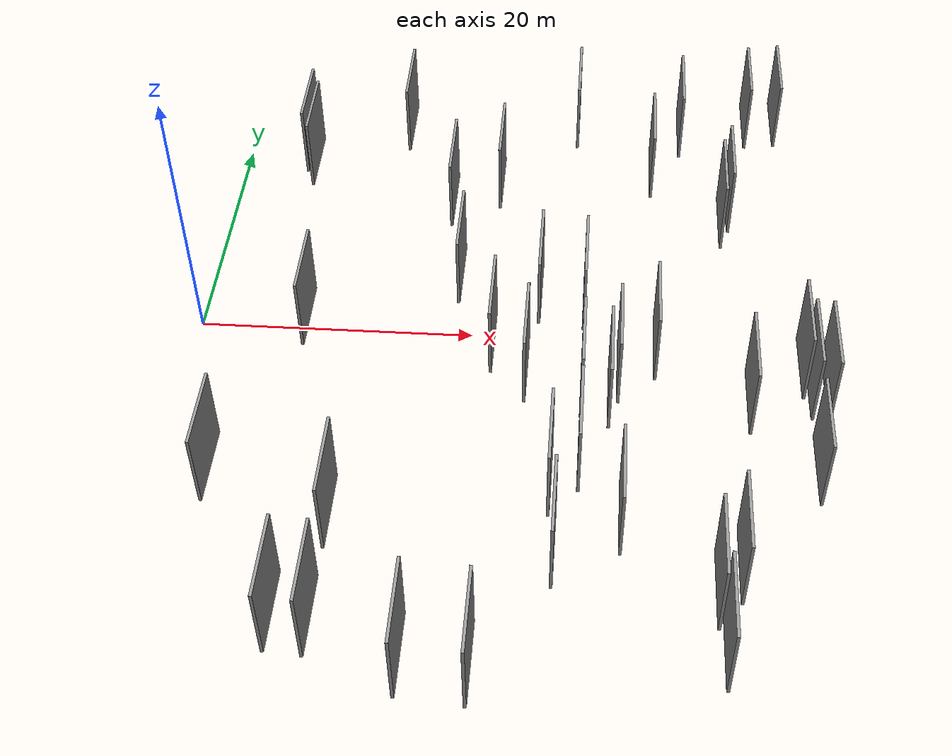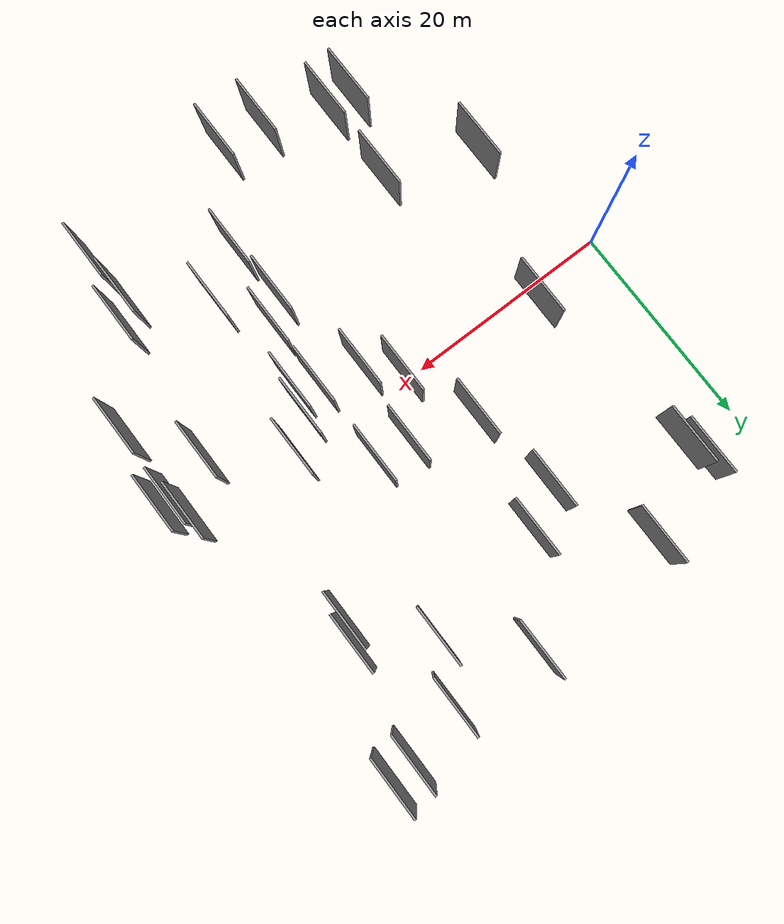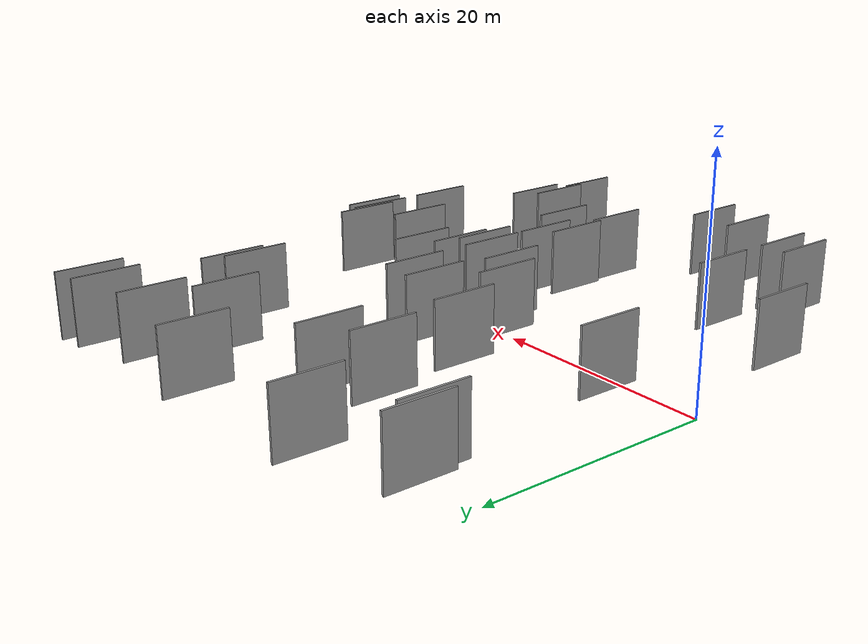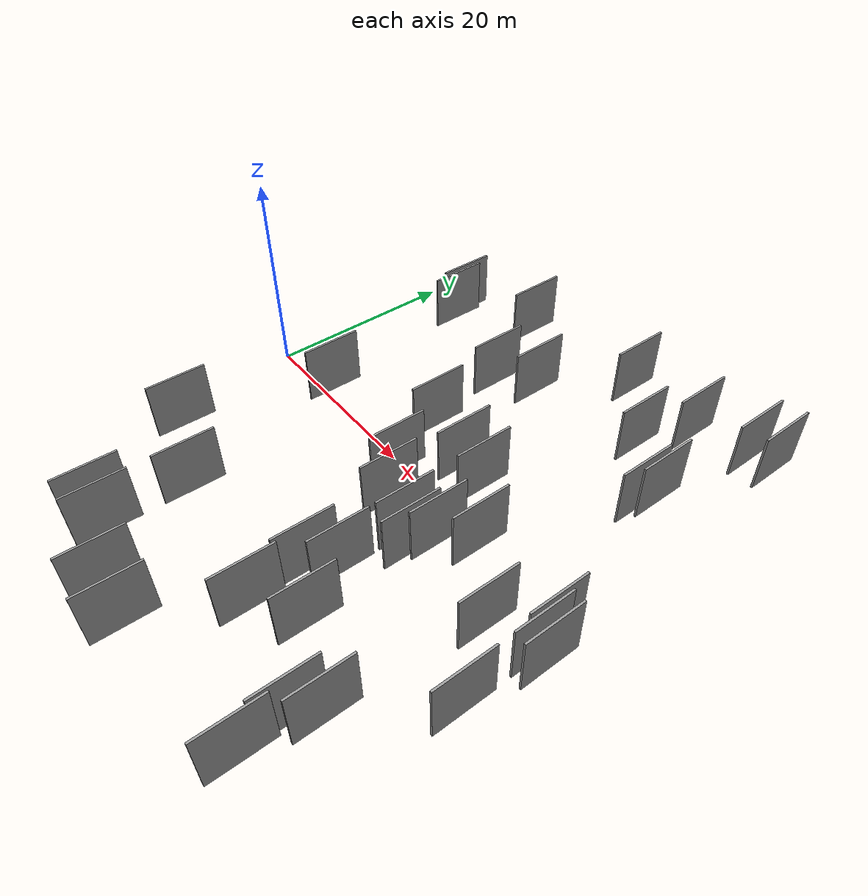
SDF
<sdf version="1.6">
 <world name="default">
  <scene>
   <sky><clouds><speed>12</speed></clouds></sky>
   <ambient>0.4 0.4 0.4 1</ambient>
   <background>0.7 0.7 0.7 1</background>
   <shadows>1</shadows>
  </scene>
  <gravity>0 0 -9.8066</gravity>
  <magnetic_field>6e-06 2.3e-05 -4.2e-05</magnetic_field>
  <physics default="0" name="default_physics" type="ode">
   <ode>
    <solver>
     <type>quick</type>
     <iters>10</iters>
     <sor>1.0</sor>
     <use_dynamic_moi_rescaling>0</use_dynamic_moi_rescaling>
    </solver>
    <constraints>
     <cfm>0</cfm>
     <erp>0.2</erp>
     <contact_max_correcting_vel>100</contact_max_correcting_vel>
     <contact_surface_layer>0.001</contact_surface_layer>
    </constraints>
   </ode>
   <max_step_size>0.004</max_step_size>
   <real_time_factor>1</real_time_factor>
   <real_time_update_rate>250</real_time_update_rate>
  </physics>
  <light name="sun" type="directional">
   <pose>0 0 10 0 0 0</pose>
   <diffuse>0.8 0.8 0.8 1</diffuse>
   <specular>0.2 0.2 0.2 1</specular>
   <attenuation>
    <range>1000</range>
    <constant>0.9</constant>
    <linear>0.01</linear>
    <quadratic>0.001</quadratic>
   </attenuation>
   <direction>-0.5 0.1 -0.9</direction>
  </light>
  <model name="grey_wall_1">
   <static>1</static>
   <pose>5.6228 19.3882 0.0 0.000000 0.000000 1.570796</pose>
   <link name="link">
    <pose>0 0 3.00 0 0 0</pose>
    <collision name="collision"><geometry><box><size>6.00 0.2 6.00</size></box></geometry></collision>
    <visual name="visual">
     <cast_shadows>0</cast_shadows>
     <geometry><box><size>6.00 0.2 6.00</size></box></geometry>
     <material>
      <script>
       <uri>model://grey_wall/materials/scripts</uri>
       <uri>model://grey_wall/materials/textures</uri>
       <name>vrc/grey_wall</name>
      </script>
     </material>
    </visual>
   </link>
  </model>
  <model name="grey_wall_2">
   <static>1</static>
   <pose>44.4000 -11.1385 0.0 0.000000 0.000000 1.570796</pose>
   <link name="link">
    <pose>0 0 3.00 0 0 0</pose>
    <collision name="collision"><geometry><box><size>6.00 0.2 6.00</size></box></geometry></collision>
    <visual name="visual">
     <cast_shadows>0</cast_shadows>
     <geometry><box><size>6.00 0.2 6.00</size></box></geometry>
     <material>
      <script>
       <uri>model://grey_wall/materials/scripts</uri>
       <uri>model://grey_wall/materials/textures</uri>
       <name>vrc/grey_wall</name>
      </script>
     </material>
    </visual>
   </link>
  </model>
  <model name="grey_wall_3">
   <static>1</static>
   <pose>13.0281 24.3655 0.0 0.000000 0.000000 1.570796</pose>
   <link name="link">
    <pose>0 0 3.00 0 0 0</pose>
    <collision name="collision"><geometry><box><size>6.00 0.2 6.00</size></box></geometry></collision>
    <visual name="visual">
     <cast_shadows>0</cast_shadows>
     <geometry><box><size>6.00 0.2 6.00</size></box></geometry>
     <material>
      <script>
       <uri>model://grey_wall/materials/scripts</uri>
       <uri>model://grey_wall/materials/textures</uri>
       <name>vrc/grey_wall</name>
      </script>
     </material>
    </visual>
   </link>
  </model>
  <model name="grey_wall_4">
   <static>1</static>
   <pose>39.2123 15.6683 0.0 0.000000 0.000000 1.570796</pose>
   <link name="link">
    <pose>0 0 3.00 0 0 0</pose>
    <collision name="collision"><geometry><box><size>6.00 0.2 6.00</size></box></geometry></collision>
    <visual name="visual">
     <cast_shadows>0</cast_shadows>
     <geometry><box><size>6.00 0.2 6.00</size></box></geometry>
     <material>
      <script>
       <uri>model://grey_wall/materials/scripts</uri>
       <uri>model://grey_wall/materials/textures</uri>
       <name>vrc/grey_wall</name>
      </script>
     </material>
    </visual>
   </link>
  </model>
  <model name="grey_wall_5">
   <static>1</static>
   <pose>24.8268 4.6167 0.0 0.000000 0.000000 1.570796</pose>
   <link name="link">
    <pose>0 0 3.00 0 0 0</pose>
    <collision name="collision"><geometry><box><size>6.00 0.2 6.00</size></box></geometry></collision>
    <visual name="visual">
     <cast_shadows>0</cast_shadows>
     <geometry><box><size>6.00 0.2 6.00</size></box></geometry>
     <material>
      <script>
       <uri>model://grey_wall/materials/scripts</uri>
       <uri>model://grey_wall/materials/textures</uri>
       <name>vrc/grey_wall</name>
      </script>
     </material>
    </visual>
   </link>
  </model>
  <model name="grey_wall_6">
   <static>1</static>
   <pose>28.2179 -4.4504 0.0 0.000000 0.000000 1.570796</pose>
   <link name="link">
    <pose>0 0 3.00 0 0 0</pose>
    <collision name="collision"><geometry><box><size>6.00 0.2 6.00</size></box></geometry></collision>
    <visual name="visual">
     <cast_shadows>0</cast_shadows>
     <geometry><box><size>6.00 0.2 6.00</size></box></geometry>
     <material>
      <script>
       <uri>model://grey_wall/materials/scripts</uri>
       <uri>model://grey_wall/materials/textures</uri>
       <name>vrc/grey_wall</name>
      </script>
     </material>
    </visual>
   </link>
  </model>
  <model name="grey_wall_7">
   <static>1</static>
   <pose>38.8228 -19.3065 0.0 0.000000 0.000000 1.570796</pose>
   <link name="link">
    <pose>0 0 3.00 0 0 0</pose>
    <collision name="collision"><geometry><box><size>6.00 0.2 6.00</size></box></geometry></collision>
    <visual name="visual">
     <cast_shadows>0</cast_shadows>
     <geometry><box><size>6.00 0.2 6.00</size></box></geometry>
     <material>
      <script>
       <uri>model://grey_wall/materials/scripts</uri>
       <uri>model://grey_wall/materials/textures</uri>
       <name>vrc/grey_wall</name>
      </script>
     </material>
    </visual>
   </link>
  </model>
  <model name="grey_wall_8">
   <static>1</static>
   <pose>7.7020 1.3010 0.0 0.000000 0.000000 1.570796</pose>
   <link name="link">
    <pose>0 0 3.00 0 0 0</pose>
    <collision name="collision"><geometry><box><size>6.00 0.2 6.00</size></box></geometry></collision>
    <visual name="visual">
     <cast_shadows>0</cast_shadows>
     <geometry><box><size>6.00 0.2 6.00</size></box></geometry>
     <material>
      <script>
       <uri>model://grey_wall/materials/scripts</uri>
       <uri>model://grey_wall/materials/textures</uri>
       <name>vrc/grey_wall</name>
      </script>
     </material>
    </visual>
   </link>
  </model>
  <model name="grey_wall_9">
   <static>1</static>
   <pose>26.7712 -18.8318 0.0 0.000000 0.000000 1.570796</pose>
   <link name="link">
    <pose>0 0 3.00 0 0 0</pose>
    <collision name="collision"><geometry><box><size>6.00 0.2 6.00</size></box></geometry></collision>
    <visual name="visual">
     <cast_shadows>0</cast_shadows>
     <geometry><box><size>6.00 0.2 6.00</size></box></geometry>
     <material>
      <script>
       <uri>model://grey_wall/materials/scripts</uri>
       <uri>model://grey_wall/materials/textures</uri>
       <name>vrc/grey_wall</name>
      </script>
     </material>
    </visual>
   </link>
  </model>
  <model name="grey_wall_10">
   <static>1</static>
   <pose>9.4231 -24.6257 0.0 0.000000 0.000000 1.570796</pose>
   <link name="link">
    <pose>0 0 3.00 0 0 0</pose>
    <collision name="collision"><geometry><box><size>6.00 0.2 6.00</size></box></geometry></collision>
    <visual name="visual">
     <cast_shadows>0</cast_shadows>
     <geometry><box><size>6.00 0.2 6.00</size></box></geometry>
     <material>
      <script>
       <uri>model://grey_wall/materials/scripts</uri>
       <uri>model://grey_wall/materials/textures</uri>
       <name>vrc/grey_wall</name>
      </script>
     </material>
    </visual>
   </link>
  </model>
  <model name="grey_wall_11">
   <static>1</static>
   <pose>21.5983 -0.5681 0.0 0.000000 0.000000 1.570796</pose>
   <link name="link">
    <pose>0 0 3.00 0 0 0</pose>
    <collision name="collision"><geometry><box><size>6.00 0.2 6.00</size></box></geometry></collision>
    <visual name="visual">
     <cast_shadows>0</cast_shadows>
     <geometry><box><size>6.00 0.2 6.00</size></box></geometry>
     <material>
      <script>
       <uri>model://grey_wall/materials/scripts</uri>
       <uri>model://grey_wall/materials/textures</uri>
       <name>vrc/grey_wall</name>
      </script>
     </material>
    </visual>
   </link>
  </model>
  <model name="grey_wall_12">
   <static>1</static>
   <pose>3.2260 -13.3596 0.0 0.000000 0.000000 1.570796</pose>
   <link name="link">
    <pose>0 0 3.00 0 0 0</pose>
    <collision name="collision"><geometry><box><size>6.00 0.2 6.00</size></box></geometry></collision>
    <visual name="visual">
     <cast_shadows>0</cast_shadows>
     <geometry><box><size>6.00 0.2 6.00</size></box></geometry>
     <material>
      <script>
       <uri>model://grey_wall/materials/scripts</uri>
       <uri>model://grey_wall/materials/textures</uri>
       <name>vrc/grey_wall</name>
      </script>
     </material>
    </visual>
   </link>
  </model>
  <model name="grey_wall_13">
   <static>1</static>
   <pose>17.7309 -27.2465 0.0 0.000000 0.000000 1.570796</pose>
   <link name="link">
    <pose>0 0 3.00 0 0 0</pose>
    <collision name="collision"><geometry><box><size>6.00 0.2 6.00</size></box></geometry></collision>
    <visual name="visual">
     <cast_shadows>0</cast_shadows>
     <geometry><box><size>6.00 0.2 6.00</size></box></geometry>
     <material>
      <script>
       <uri>model://grey_wall/materials/scripts</uri>
       <uri>model://grey_wall/materials/textures</uri>
       <name>vrc/grey_wall</name>
      </script>
     </material>
    </visual>
   </link>
  </model>
  <model name="grey_wall_14">
   <static>1</static>
   <pose>33.1355 19.5572 0.0 0.000000 0.000000 1.570796</pose>
   <link name="link">
    <pose>0 0 3.00 0 0 0</pose>
    <collision name="collision"><geometry><box><size>6.00 0.2 6.00</size></box></geometry></collision>
    <visual name="visual">
     <cast_shadows>0</cast_shadows>
     <geometry><box><size>6.00 0.2 6.00</size></box></geometry>
     <material>
      <script>
       <uri>model://grey_wall/materials/scripts</uri>
       <uri>model://grey_wall/materials/textures</uri>
       <name>vrc/grey_wall</name>
      </script>
     </material>
    </visual>
   </link>
  </model>
  <model name="grey_wall_15">
   <static>1</static>
   <pose>21.0847 17.4154 0.0 0.000000 0.000000 1.570796</pose>
   <link name="link">
    <pose>0 0 3.00 0 0 0</pose>
    <collision name="collision"><geometry><box><size>6.00 0.2 6.00</size></box></geometry></collision>
    <visual name="visual">
     <cast_shadows>0</cast_shadows>
     <geometry><box><size>6.00 0.2 6.00</size></box></geometry>
     <material>
      <script>
       <uri>model://grey_wall/materials/scripts</uri>
       <uri>model://grey_wall/materials/textures</uri>
       <name>vrc/grey_wall</name>
      </script>
     </material>
    </visual>
   </link>
  </model>
  <model name="grey_wall_16">
   <static>1</static>
   <pose>45.5664 -3.7414 0.0 0.000000 0.000000 1.570796</pose>
   <link name="link">
    <pose>0 0 3.00 0 0 0</pose>
    <collision name="collision"><geometry><box><size>6.00 0.2 6.00</size></box></geometry></collision>
    <visual name="visual">
     <cast_shadows>0</cast_shadows>
     <geometry><box><size>6.00 0.2 6.00</size></box></geometry>
     <material>
      <script>
       <uri>model://grey_wall/materials/scripts</uri>
       <uri>model://grey_wall/materials/textures</uri>
       <name>vrc/grey_wall</name>
      </script>
     </material>
    </visual>
   </link>
  </model>
  <model name="grey_wall_17">
   <static>1</static>
   <pose>44.3735 -3.6264 0.0 0.000000 0.000000 1.570796</pose>
   <link name="link">
    <pose>0 0 3.00 0 0 0</pose>
    <collision name="collision"><geometry><box><size>6.00 0.2 6.00</size></box></geometry></collision>
    <visual name="visual">
     <cast_shadows>0</cast_shadows>
     <geometry><box><size>6.00 0.2 6.00</size></box></geometry>
     <material>
      <script>
       <uri>model://grey_wall/materials/scripts</uri>
       <uri>model://grey_wall/materials/textures</uri>
       <name>vrc/grey_wall</name>
      </script>
     </material>
    </visual>
   </link>
  </model>
  <model name="grey_wall_18">
   <static>1</static>
   <pose>11.9200 -16.6641 0.0 0.000000 0.000000 1.570796</pose>
   <link name="link">
    <pose>0 0 3.00 0 0 0</pose>
    <collision name="collision"><geometry><box><size>6.00 0.2 6.00</size></box></geometry></collision>
    <visual name="visual">
     <cast_shadows>0</cast_shadows>
     <geometry><box><size>6.00 0.2 6.00</size></box></geometry>
     <material>
      <script>
       <uri>model://grey_wall/materials/scripts</uri>
       <uri>model://grey_wall/materials/textures</uri>
       <name>vrc/grey_wall</name>
      </script>
     </material>
    </visual>
   </link>
  </model>
  <model name="grey_wall_19">
   <static>1</static>
   <pose>35.5066 24.8815 0.0 0.000000 0.000000 1.570796</pose>
   <link name="link">
    <pose>0 0 3.00 0 0 0</pose>
    <collision name="collision"><geometry><box><size>6.00 0.2 6.00</size></box></geometry></collision>
    <visual name="visual">
     <cast_shadows>0</cast_shadows>
     <geometry><box><size>6.00 0.2 6.00</size></box></geometry>
     <material>
      <script>
       <uri>model://grey_wall/materials/scripts</uri>
       <uri>model://grey_wall/materials/textures</uri>
       <name>vrc/grey_wall</name>
      </script>
     </material>
    </visual>
   </link>
  </model>
  <model name="grey_wall_20">
   <static>1</static>
   <pose>40.0006 -5.2245 0.0 0.000000 0.000000 1.570796</pose>
   <link name="link">
    <pose>0 0 3.00 0 0 0</pose>
    <collision name="collision"><geometry><box><size>6.00 0.2 6.00</size></box></geometry></collision>
    <visual name="visual">
     <cast_shadows>0</cast_shadows>
     <geometry><box><size>6.00 0.2 6.00</size></box></geometry>
     <material>
      <script>
       <uri>model://grey_wall/materials/scripts</uri>
       <uri>model://grey_wall/materials/textures</uri>
       <name>vrc/grey_wall</name>
      </script>
     </material>
    </visual>
   </link>
  </model>
  <model name="grey_wall_21">
   <static>1</static>
   <pose>43.9097 -1.7223 0.0 0.000000 0.000000 1.570796</pose>
   <link name="link">
    <pose>0 0 3.00 0 0 0</pose>
    <collision name="collision"><geometry><box><size>6.00 0.2 6.00</size></box></geometry></collision>
    <visual name="visual">
     <cast_shadows>0</cast_shadows>
     <geometry><box><size>6.00 0.2 6.00</size></box></geometry>
     <material>
      <script>
       <uri>model://grey_wall/materials/scripts</uri>
       <uri>model://grey_wall/materials/textures</uri>
       <name>vrc/grey_wall</name>
      </script>
     </material>
    </visual>
   </link>
  </model>
  <model name="grey_wall_22">
   <static>1</static>
   <pose>33.4130 -0.5231 0.0 0.000000 0.000000 1.570796</pose>
   <link name="link">
    <pose>0 0 3.00 0 0 0</pose>
    <collision name="collision"><geometry><box><size>6.00 0.2 6.00</size></box></geometry></collision>
    <visual name="visual">
     <cast_shadows>0</cast_shadows>
     <geometry><box><size>6.00 0.2 6.00</size></box></geometry>
     <material>
      <script>
       <uri>model://grey_wall/materials/scripts</uri>
       <uri>model://grey_wall/materials/textures</uri>
       <name>vrc/grey_wall</name>
      </script>
     </material>
    </visual>
   </link>
  </model>
  <model name="grey_wall_23">
   <static>1</static>
   <pose>18.7232 6.3720 0.0 0.000000 0.000000 1.570796</pose>
   <link name="link">
    <pose>0 0 3.00 0 0 0</pose>
    <collision name="collision"><geometry><box><size>6.00 0.2 6.00</size></box></geometry></collision>
    <visual name="visual">
     <cast_shadows>0</cast_shadows>
     <geometry><box><size>6.00 0.2 6.00</size></box></geometry>
     <material>
      <script>
       <uri>model://grey_wall/materials/scripts</uri>
       <uri>model://grey_wall/materials/textures</uri>
       <name>vrc/grey_wall</name>
      </script>
     </material>
    </visual>
   </link>
  </model>
  <model name="grey_wall_24">
   <static>1</static>
   <pose>31.0983 -16.0170 0.0 0.000000 0.000000 1.570796</pose>
   <link name="link">
    <pose>0 0 3.00 0 0 0</pose>
    <collision name="collision"><geometry><box><size>6.00 0.2 6.00</size></box></geometry></collision>
    <visual name="visual">
     <cast_shadows>0</cast_shadows>
     <geometry><box><size>6.00 0.2 6.00</size></box></geometry>
     <material>
      <script>
       <uri>model://grey_wall/materials/scripts</uri>
       <uri>model://grey_wall/materials/textures</uri>
       <name>vrc/grey_wall</name>
      </script>
     </material>
    </visual>
   </link>
  </model>
  <model name="grey_wall_25">
   <static>1</static>
   <pose>27.0245 25.5531 0.0 0.000000 0.000000 1.570796</pose>
   <link name="link">
    <pose>0 0 3.00 0 0 0</pose>
    <collision name="collision"><geometry><box><size>6.00 0.2 6.00</size></box></geometry></collision>
    <visual name="visual">
     <cast_shadows>0</cast_shadows>
     <geometry><box><size>6.00 0.2 6.00</size></box></geometry>
     <material>
      <script>
       <uri>model://grey_wall/materials/scripts</uri>
       <uri>model://grey_wall/materials/textures</uri>
       <name>vrc/grey_wall</name>
      </script>
     </material>
    </visual>
   </link>
  </model>
  <model name="grey_wall_26">
   <static>1</static>
   <pose>41.0014 26.3945 0.0 0.000000 0.000000 1.570796</pose>
   <link name="link">
    <pose>0 0 3.00 0 0 0</pose>
    <collision name="collision"><geometry><box><size>6.00 0.2 6.00</size></box></geometry></collision>
    <visual name="visual">
     <cast_shadows>0</cast_shadows>
     <geometry><box><size>6.00 0.2 6.00</size></box></geometry>
     <material>
      <script>
       <uri>model://grey_wall/materials/scripts</uri>
       <uri>model://grey_wall/materials/textures</uri>
       <name>vrc/grey_wall</name>
      </script>
     </material>
    </visual>
   </link>
  </model>
  <model name="grey_wall_27">
   <static>1</static>
   <pose>30.1677 -5.2687 0.0 0.000000 0.000000 1.570796</pose>
   <link name="link">
    <pose>0 0 3.00 0 0 0</pose>
    <collision name="collision"><geometry><box><size>6.00 0.2 6.00</size></box></geometry></collision>
    <visual name="visual">
     <cast_shadows>0</cast_shadows>
     <geometry><box><size>6.00 0.2 6.00</size></box></geometry>
     <material>
      <script>
       <uri>model://grey_wall/materials/scripts</uri>
       <uri>model://grey_wall/materials/textures</uri>
       <name>vrc/grey_wall</name>
      </script>
     </material>
    </visual>
   </link>
  </model>
  <model name="grey_wall_28">
   <static>1</static>
   <pose>22.0834 -27.6190 0.0 0.000000 0.000000 1.570796</pose>
   <link name="link">
    <pose>0 0 3.00 0 0 0</pose>
    <collision name="collision"><geometry><box><size>6.00 0.2 6.00</size></box></geometry></collision>
    <visual name="visual">
     <cast_shadows>0</cast_shadows>
     <geometry><box><size>6.00 0.2 6.00</size></box></geometry>
     <material>
      <script>
       <uri>model://grey_wall/materials/scripts</uri>
       <uri>model://grey_wall/materials/textures</uri>
       <name>vrc/grey_wall</name>
      </script>
     </material>
    </visual>
   </link>
  </model>
  <model name="grey_wall_29">
   <static>1</static>
   <pose>17.3978 15.0946 0.0 0.000000 0.000000 1.570796</pose>
   <link name="link">
    <pose>0 0 3.00 0 0 0</pose>
    <collision name="collision"><geometry><box><size>6.00 0.2 6.00</size></box></geometry></collision>
    <visual name="visual">
     <cast_shadows>0</cast_shadows>
     <geometry><box><size>6.00 0.2 6.00</size></box></geometry>
     <material>
      <script>
       <uri>model://grey_wall/materials/scripts</uri>
       <uri>model://grey_wall/materials/textures</uri>
       <name>vrc/grey_wall</name>
      </script>
     </material>
    </visual>
   </link>
  </model>
  <model name="grey_wall_30">
   <static>1</static>
   <pose>30.7826 -2.9107 0.0 0.000000 0.000000 1.570796</pose>
   <link name="link">
    <pose>0 0 3.00 0 0 0</pose>
    <collision name="collision"><geometry><box><size>6.00 0.2 6.00</size></box></geometry></collision>
    <visual name="visual">
     <cast_shadows>0</cast_shadows>
     <geometry><box><size>6.00 0.2 6.00</size></box></geometry>
     <material>
      <script>
       <uri>model://grey_wall/materials/scripts</uri>
       <uri>model://grey_wall/materials/textures</uri>
       <name>vrc/grey_wall</name>
      </script>
     </material>
    </visual>
   </link>
  </model>
  <model name="grey_wall_31">
   <static>1</static>
   <pose>43.4317 26.8011 0.0 0.000000 0.000000 1.570796</pose>
   <link name="link">
    <pose>0 0 3.00 0 0 0</pose>
    <collision name="collision"><geometry><box><size>6.00 0.2 6.00</size></box></geometry></collision>
    <visual name="visual">
     <cast_shadows>0</cast_shadows>
     <geometry><box><size>6.00 0.2 6.00</size></box></geometry>
     <material>
      <script>
       <uri>model://grey_wall/materials/scripts</uri>
       <uri>model://grey_wall/materials/textures</uri>
       <name>vrc/grey_wall</name>
      </script>
     </material>
    </visual>
   </link>
  </model>
  <model name="grey_wall_32">
   <static>1</static>
   <pose>24.1638 -3.2654 0.0 0.000000 0.000000 1.570796</pose>
   <link name="link">
    <pose>0 0 3.00 0 0 0</pose>
    <collision name="collision"><geometry><box><size>6.00 0.2 6.00</size></box></geometry></collision>
    <visual name="visual">
     <cast_shadows>0</cast_shadows>
     <geometry><box><size>6.00 0.2 6.00</size></box></geometry>
     <material>
      <script>
       <uri>model://grey_wall/materials/scripts</uri>
       <uri>model://grey_wall/materials/textures</uri>
       <name>vrc/grey_wall</name>
      </script>
     </material>
    </visual>
   </link>
  </model>
  <model name="grey_wall_33">
   <static>1</static>
   <pose>37.2992 -21.2523 0.0 0.000000 0.000000 1.570796</pose>
   <link name="link">
    <pose>0 0 3.00 0 0 0</pose>
    <collision name="collision"><geometry><box><size>6.00 0.2 6.00</size></box></geometry></collision>
    <visual name="visual">
     <cast_shadows>0</cast_shadows>
     <geometry><box><size>6.00 0.2 6.00</size></box></geometry>
     <material>
      <script>
       <uri>model://grey_wall/materials/scripts</uri>
       <uri>model://grey_wall/materials/textures</uri>
       <name>vrc/grey_wall</name>
      </script>
     </material>
    </visual>
   </link>
  </model>
  <model name="grey_wall_34">
   <static>1</static>
   <pose>38.5765 13.7921 0.0 0.000000 0.000000 1.570796</pose>
   <link name="link">
    <pose>0 0 3.00 0 0 0</pose>
    <collision name="collision"><geometry><box><size>6.00 0.2 6.00</size></box></geometry></collision>
    <visual name="visual">
     <cast_shadows>0</cast_shadows>
     <geometry><box><size>6.00 0.2 6.00</size></box></geometry>
     <material>
      <script>
       <uri>model://grey_wall/materials/scripts</uri>
       <uri>model://grey_wall/materials/textures</uri>
       <name>vrc/grey_wall</name>
      </script>
     </material>
    </visual>
   </link>
  </model>
  <model name="grey_wall_35">
   <static>1</static>
   <pose>28.2334 -11.0327 0.0 0.000000 0.000000 1.570796</pose>
   <link name="link">
    <pose>0 0 3.00 0 0 0</pose>
    <collision name="collision"><geometry><box><size>6.00 0.2 6.00</size></box></geometry></collision>
    <visual name="visual">
     <cast_shadows>0</cast_shadows>
     <geometry><box><size>6.00 0.2 6.00</size></box></geometry>
     <material>
      <script>
       <uri>model://grey_wall/materials/scripts</uri>
       <uri>model://grey_wall/materials/textures</uri>
       <name>vrc/grey_wall</name>
      </script>
     </material>
    </visual>
   </link>
  </model>
  <model name="grey_wall_36">
   <static>1</static>
   <pose>28.1588 4.1930 0.0 0.000000 0.000000 1.570796</pose>
   <link name="link">
    <pose>0 0 3.00 0 0 0</pose>
    <collision name="collision"><geometry><box><size>6.00 0.2 6.00</size></box></geometry></collision>
    <visual name="visual">
     <cast_shadows>0</cast_shadows>
     <geometry><box><size>6.00 0.2 6.00</size></box></geometry>
     <material>
      <script>
       <uri>model://grey_wall/materials/scripts</uri>
       <uri>model://grey_wall/materials/textures</uri>
       <name>vrc/grey_wall</name>
      </script>
     </material>
    </visual>
   </link>
  </model>
  <model name="grey_wall_37">
   <static>1</static>
   <pose>11.8783 -24.8022 0.0 0.000000 0.000000 1.570796</pose>
   <link name="link">
    <pose>0 0 3.00 0 0 0</pose>
    <collision name="collision"><geometry><box><size>6.00 0.2 6.00</size></box></geometry></collision>
    <visual name="visual">
     <cast_shadows>0</cast_shadows>
     <geometry><box><size>6.00 0.2 6.00</size></box></geometry>
     <material>
      <script>
       <uri>model://grey_wall/materials/scripts</uri>
       <uri>model://grey_wall/materials/textures</uri>
       <name>vrc/grey_wall</name>
      </script>
     </material>
    </visual>
   </link>
  </model>
  <model name="grey_wall_38">
   <static>1</static>
   <pose>37.6747 -25.5926 0.0 0.000000 0.000000 1.570796</pose>
   <link name="link">
    <pose>0 0 3.00 0 0 0</pose>
    <collision name="collision"><geometry><box><size>6.00 0.2 6.00</size></box></geometry></collision>
    <visual name="visual">
     <cast_shadows>0</cast_shadows>
     <geometry><box><size>6.00 0.2 6.00</size></box></geometry>
     <material>
      <script>
       <uri>model://grey_wall/materials/scripts</uri>
       <uri>model://grey_wall/materials/textures</uri>
       <name>vrc/grey_wall</name>
      </script>
     </material>
    </visual>
   </link>
  </model>
  <model name="grey_wall_39">
   <static>1</static>
   <pose>26.3231 -13.1771 0.0 0.000000 0.000000 1.570796</pose>
   <link name="link">
    <pose>0 0 3.00 0 0 0</pose>
    <collision name="collision"><geometry><box><size>6.00 0.2 6.00</size></box></geometry></collision>
    <visual name="visual">
     <cast_shadows>0</cast_shadows>
     <geometry><box><size>6.00 0.2 6.00</size></box></geometry>
     <material>
      <script>
       <uri>model://grey_wall/materials/scripts</uri>
       <uri>model://grey_wall/materials/textures</uri>
       <name>vrc/grey_wall</name>
      </script>
     </material>
    </visual>
   </link>
  </model>
  <model name="grey_wall_40">
   <static>1</static>
   <pose>4.9601 21.0456 0.0 0.000000 0.000000 1.570796</pose>
   <link name="link">
    <pose>0 0 3.00 0 0 0</pose>
    <collision name="collision"><geometry><box><size>6.00 0.2 6.00</size></box></geometry></collision>
    <visual name="visual">
     <cast_shadows>0</cast_shadows>
     <geometry><box><size>6.00 0.2 6.00</size></box></geometry>
     <material>
      <script>
       <uri>model://grey_wall/materials/scripts</uri>
       <uri>model://grey_wall/materials/textures</uri>
       <name>vrc/grey_wall</name>
      </script>
     </material>
    </visual>
   </link>
  </model>
 </world>
</sdf>
